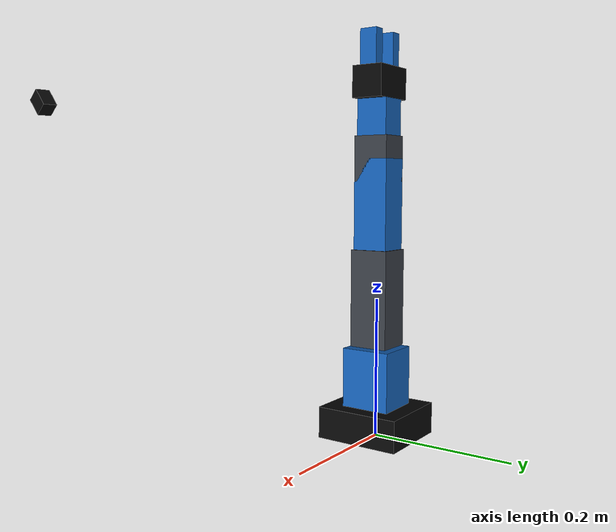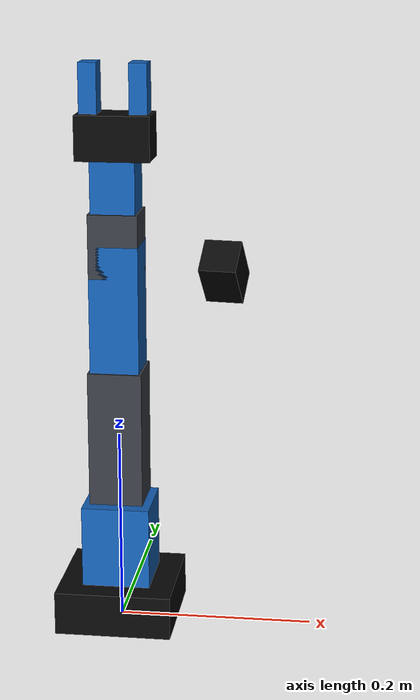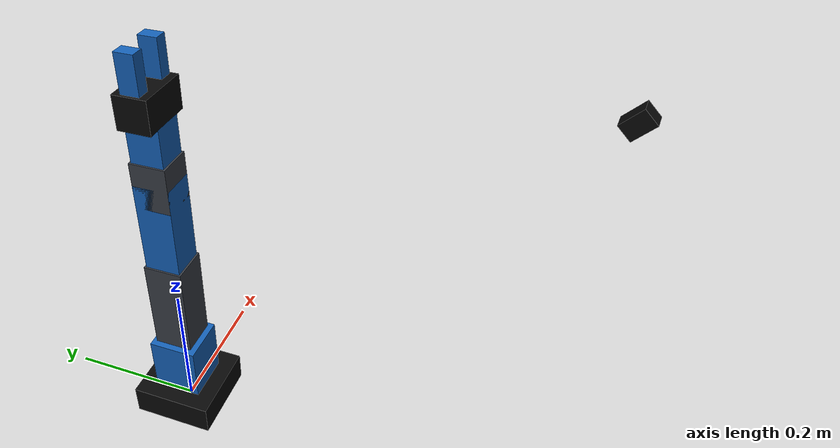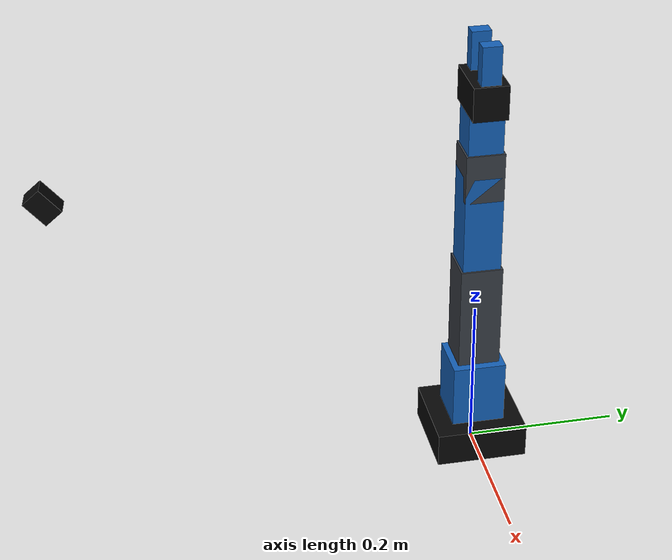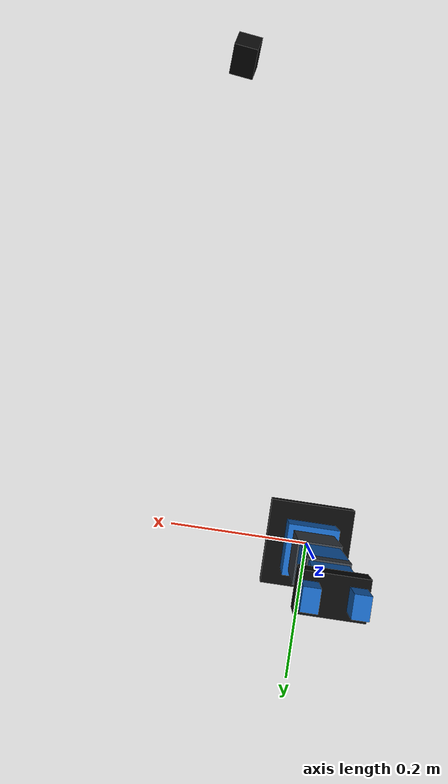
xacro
<?xml version="1.0"?>
<robot xmlns:xacro="http://www.ros.org/wiki/xacro" name="so101">
  <xacro:arg name="use_gazebo" default="false"/>
  <xacro:arg name="controllers_file" default=""/>

  <material name="so101_gray"><color rgba="0.22 0.24 0.27 1"/></material>
  <material name="so101_blue"><color rgba="0.08 0.38 0.72 1"/></material>
  <material name="so101_black"><color rgba="0.03 0.03 0.03 1"/></material>

  <xacro:macro name="box_link" params="name sx sy sz mass color:=so101_gray">
    <link name="${name}">
      <inertial>
        <origin xyz="0 0 0"/>
        <mass value="${mass}"/>
        <inertia ixx="${mass * (sy * sy + sz * sz) / 12.0}" ixy="0" ixz="0"
                 iyy="${mass * (sx * sx + sz * sz) / 12.0}" iyz="0"
                 izz="${mass * (sx * sx + sy * sy) / 12.0}"/>
      </inertial>
      <visual><geometry><box size="${sx} ${sy} ${sz}"/></geometry><material name="${color}"/></visual>
      <collision><geometry><box size="${sx} ${sy} ${sz}"/></geometry></collision>
    </link>
  </xacro:macro>

  <xacro:property name="joint_limits" value="${xacro.load_yaml('../config/joint_limits.json')['joints']}"/>
  <xacro:macro name="joint_limit" params="name effort velocity">
    <limit lower="${joint_limits[name]['lower']}" upper="${joint_limits[name]['upper']}"
           effort="${effort}" velocity="${velocity}"/>
  </xacro:macro>

  <link name="world"/>
  <xacro:box_link name="base_link" sx="0.12" sy="0.12" sz="0.045" mass="0.42" color="so101_black"/>
  <joint name="world_to_base" type="fixed">
    <parent link="world"/><child link="base_link"/><origin xyz="0 0 0.0225"/>
  </joint>

  <xacro:box_link name="shoulder_link" sx="0.07" sy="0.07" sz="0.085" mass="0.22" color="so101_blue"/>
  <joint name="shoulder_pan" type="revolute">
    <parent link="base_link"/><child link="shoulder_link"/>
    <origin xyz="0 0 0.065"/><axis xyz="0 0 1"/>
    <xacro:joint_limit name="shoulder_pan" effort="6.0" velocity="3.0"/>
    <dynamics damping="0.08" friction="0.02"/>
  </joint>

  <link name="upper_arm_link">
    <inertial><origin xyz="0 0 0.07"/><mass value="0.28"/><inertia ixx="0.00055" ixy="0" ixz="0" iyy="0.00055" iyz="0" izz="0.00012"/></inertial>
    <visual><origin xyz="0 0 0.07"/><geometry><box size="0.055 0.055 0.14"/></geometry><material name="so101_gray"/></visual>
    <collision><origin xyz="0 0 0.07"/><geometry><box size="0.055 0.055 0.14"/></geometry></collision>
  </link>
  <joint name="shoulder_lift" type="revolute">
    <parent link="shoulder_link"/><child link="upper_arm_link"/>
    <origin xyz="0 0 0.045"/><axis xyz="0 1 0"/>
    <xacro:joint_limit name="shoulder_lift" effort="6.0" velocity="3.0"/>
    <dynamics damping="0.08" friction="0.02"/>
  </joint>

  <link name="forearm_link">
    <inertial><origin xyz="0 0 0.065"/><mass value="0.24"/><inertia ixx="0.00040" ixy="0" ixz="0" iyy="0.00040" iyz="0" izz="0.00010"/></inertial>
    <visual><origin xyz="0 0 0.065"/><geometry><box size="0.05 0.05 0.13"/></geometry><material name="so101_blue"/></visual>
    <collision><origin xyz="0 0 0.065"/><geometry><box size="0.05 0.05 0.13"/></geometry></collision>
  </link>
  <joint name="elbow_flex" type="revolute">
    <parent link="upper_arm_link"/><child link="forearm_link"/>
    <origin xyz="0 0 0.14"/><axis xyz="0 1 0"/>
    <xacro:joint_limit name="elbow_flex" effort="6.0" velocity="3.0"/>
    <dynamics damping="0.07" friction="0.02"/>
  </joint>

  <xacro:box_link name="wrist_pitch_link" sx="0.05" sy="0.05" sz="0.065" mass="0.13" color="so101_gray"/>
  <joint name="wrist_flex" type="revolute">
    <parent link="forearm_link"/><child link="wrist_pitch_link"/>
    <origin xyz="0 0 0.13"/><axis xyz="0 1 0"/>
    <xacro:joint_limit name="wrist_flex" effort="3.0" velocity="4.0"/>
    <dynamics damping="0.05" friction="0.01"/>
  </joint>

  <xacro:box_link name="wrist_roll_link" sx="0.045" sy="0.045" sz="0.06" mass="0.11" color="so101_blue"/>
  <joint name="wrist_roll" type="revolute">
    <parent link="wrist_pitch_link"/><child link="wrist_roll_link"/>
    <origin xyz="0 0 0.055"/><axis xyz="0 0 1"/>
    <xacro:joint_limit name="wrist_roll" effort="3.0" velocity="4.0"/>
    <dynamics damping="0.04" friction="0.01"/>
  </joint>

  <xacro:box_link name="gripper_base_link" sx="0.075" sy="0.045" sz="0.045" mass="0.10" color="so101_black"/>
  <joint name="wrist_to_gripper" type="fixed">
    <parent link="wrist_roll_link"/><child link="gripper_base_link"/><origin xyz="0 0 0.052"/>
  </joint>

  <xacro:box_link name="gripper_jaw_link" sx="0.018" sy="0.025" sz="0.075" mass="0.035" color="so101_blue"/>
  <joint name="gripper" type="prismatic">
    <parent link="gripper_base_link"/><child link="gripper_jaw_link"/>
    <origin xyz="0.025 0 0.035"/><axis xyz="1 0 0"/>
    <xacro:joint_limit name="gripper" effort="2.0" velocity="0.15"/>
    <dynamics damping="0.05" friction="0.01"/>
  </joint>

  <link name="fixed_jaw_link">
    <visual><origin xyz="-0.025 0 0.035"/><geometry><box size="0.018 0.025 0.075"/></geometry><material name="so101_blue"/></visual>
    <collision><origin xyz="-0.025 0 0.035"/><geometry><box size="0.018 0.025 0.075"/></geometry></collision>
  </link>
  <joint name="fixed_jaw_joint" type="fixed">
    <parent link="gripper_base_link"/><child link="fixed_jaw_link"/>
  </joint>

  <!-- The camera body sits behind the lens so the simulator camera, rendered
       at this link's origin, does not look out from inside it. -->
  <link name="groot_camera_link">
    <visual><origin xyz="-0.02 0 0"/><geometry><box size="0.035 0.025 0.025"/></geometry><material name="so101_black"/></visual>
    <collision><origin xyz="-0.02 0 0"/><geometry><box size="0.035 0.025 0.025"/></geometry></collision>
  </link>
  <!-- Must equal the scenario camera pose (systems/so101/scenarios/picking_table.json
       "camera") relative to base_link; checked by validate_calibration_and_dataset.py. -->
  <joint name="base_to_groot_camera" type="fixed">
    <parent link="base_link"/><child link="groot_camera_link"/>
    <origin xyz="0.1697563 -0.5219908 0.4646126" rpy="0.0 0.8464847 1.449"/>
  </joint>
  <link name="groot_camera_rgb_optical_frame"/>
  <joint name="groot_camera_optical_joint" type="fixed">
    <parent link="groot_camera_link"/><child link="groot_camera_rgb_optical_frame"/>
    <origin xyz="0 0 0" rpy="-1.57079632679 0 -1.57079632679"/>
  </joint>

  <ros2_control name="SO101System" type="system">
    <hardware><plugin>gz_ros2_control/GazeboSimSystem</plugin></hardware>
    <joint name="shoulder_pan"><command_interface name="position"/><state_interface name="position"><param name="initial_value">0.0</param></state_interface><state_interface name="velocity"/></joint>
    <joint name="shoulder_lift"><command_interface name="position"/><state_interface name="position"><param name="initial_value">0.0</param></state_interface><state_interface name="velocity"/></joint>
    <joint name="elbow_flex"><command_interface name="position"/><state_interface name="position"><param name="initial_value">0.0</param></state_interface><state_interface name="velocity"/></joint>
    <joint name="wrist_flex"><command_interface name="position"/><state_interface name="position"><param name="initial_value">0.0</param></state_interface><state_interface name="velocity"/></joint>
    <joint name="wrist_roll"><command_interface name="position"/><state_interface name="position"><param name="initial_value">0.0</param></state_interface><state_interface name="velocity"/></joint>
    <joint name="gripper"><command_interface name="position"/><state_interface name="position"><param name="initial_value">0.0</param></state_interface><state_interface name="velocity"/></joint>
  </ros2_control>

  <xacro:if value="$(arg use_gazebo)">
    <gazebo>
      <plugin filename="gz_ros2_control-system" name="gz_ros2_control::GazeboSimROS2ControlPlugin">
        <parameters>$(arg controllers_file)</parameters>
      </plugin>
    </gazebo>
  </xacro:if>
</robot>
